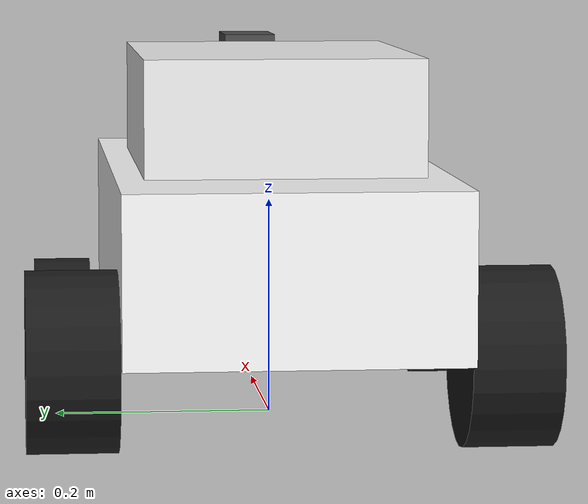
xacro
<?xml version="1.0"?>
<robot name="diffbot" xmlns:xacro="http://www.ros.org/wiki/xacro">

  <!-- Xacro argument from launch for the controllers YAML path -->
  <xacro:arg name="controllers_yaml" default=""/>

  <!-- Floating root link for robot_state_publisher; not anchored to Gazebo world -->
  <link name="base_footprint"/>
  <joint name="base_footprint_to_base" type="fixed">
    <parent link="base_footprint"/>
    <child link="base_link"/>
    <origin xyz="0 0 0" rpy="0 0 0"/>
  </joint>

  <!-- Base chassis -->
  <link name="base_link">
    <inertial>
      <mass value="2.0"/>
      <inertia ixx="0.1" iyy="0.3" izz="0.3" ixy="0" ixz="0" iyz="0"/>
      <origin xyz="0 0 0.16"/>
    </inertial>
    <collision>
      <geometry>
        <box size="0.6 0.3 0.15"/>
      </geometry>
      <origin xyz="0 0 0.16"/>
    </collision>
    <visual name="chassis">
      <geometry>
        <box size="0.6 0.3 0.15"/>
      </geometry>
      <origin xyz="0 0 0.16"/>
      <material name="white">
        <color rgba="1 1 1 1"/>
      </material>
    </visual>
  </link>

  <!-- Cabin/body top -->
  <link name="cabin">
    <inertial>
      <mass value="0.5"/>
      <inertia ixx="0.05" iyy="0.05" izz="0.05" ixy="0" ixz="0" iyz="0"/>
      <origin xyz="0 0 0"/>
    </inertial>
    <visual name="cabin">
      <geometry>
        <box size="0.35 0.25 0.12"/>
      </geometry>
      <material name="light_white">
        <color rgba="0.95 0.95 0.95 1"/>
      </material>
    </visual>
  </link>

  <joint name="cabin_joint" type="fixed">
    <parent link="base_link"/>
    <child link="cabin"/>
    <origin xyz="0 0 0.28" rpy="0 0 0"/>
  </joint>

  <!-- Left wheel -->
  <link name="left_wheel">
    <inertial>
      <mass value="0.3"/>
      <inertia ixx="0.01" iyy="0.01" izz="0.01" ixy="0" ixz="0" iyz="0"/>
    </inertial>
    <collision>
      <geometry>
        <cylinder radius="0.08" length="0.08"/>
      </geometry>
      <origin xyz="0 0 0" rpy="1.5708 0 0"/>
    </collision>
    <visual>
      <geometry>
        <cylinder radius="0.08" length="0.08"/>
      </geometry>
      <origin xyz="0 0 0" rpy="1.5708 0 0"/>
      <material name="black">
        <color rgba="0.1 0.1 0.1 1"/>
      </material>
    </visual>
  </link>

  <!-- Right wheel -->
  <link name="right_wheel">
    <inertial>
      <mass value="0.3"/>
      <inertia ixx="0.01" iyy="0.01" izz="0.01" ixy="0" ixz="0" iyz="0"/>
    </inertial>
    <collision>
      <geometry>
        <cylinder radius="0.08" length="0.08"/>
      </geometry>
      <origin xyz="0 0 0" rpy="1.5708 0 0"/>
    </collision>
    <visual>
      <geometry>
        <cylinder radius="0.08" length="0.08"/>
      </geometry>
      <origin xyz="0 0 0" rpy="1.5708 0 0"/>
      <material name="black">
        <color rgba="0.1 0.1 0.1 1"/>
      </material>
    </visual>
  </link>

  <!-- Passive front support wheels -->
  <link name="front_left_wheel">
    <inertial>
      <mass value="0.1"/>
      <inertia ixx="0.001" iyy="0.001" izz="0.001" ixy="0" ixz="0" iyz="0"/>
    </inertial>
    <collision>
      <geometry>
        <sphere radius="0.055"/>
      </geometry>
    </collision>
    <visual>
      <geometry>
        <cylinder radius="0.06" length="0.055"/>
      </geometry>
      <origin xyz="0 0 0" rpy="1.5708 0 0"/>
      <material name="black">
        <color rgba="0.1 0.1 0.1 1"/>
      </material>
    </visual>
  </link>

  <link name="front_right_wheel">
    <inertial>
      <mass value="0.1"/>
      <inertia ixx="0.001" iyy="0.001" izz="0.001" ixy="0" ixz="0" iyz="0"/>
    </inertial>
    <collision>
      <geometry>
        <sphere radius="0.055"/>
      </geometry>
    </collision>
    <visual>
      <geometry>
        <cylinder radius="0.06" length="0.055"/>
      </geometry>
      <origin xyz="0 0 0" rpy="1.5708 0 0"/>
      <material name="black">
        <color rgba="0.1 0.1 0.1 1"/>
      </material>
    </visual>
  </link>

  <!-- Camera link -->
  <link name="camera_link">
    <inertial>
      <mass value="0.05"/>
      <inertia ixx="0.0001" iyy="0.0001" izz="0.0001" ixy="0" ixz="0" iyz="0"/>
    </inertial>
    <visual>
      <geometry>
        <box size="0.08 0.05 0.05"/>
      </geometry>
      <material name="gray">
        <color rgba="0.3 0.3 0.3 1"/>
      </material>
    </visual>
  </link>

  <!-- Joints for wheels -->
  <joint name="left_wheel_joint" type="continuous">
    <parent link="base_link"/>
    <child link="left_wheel"/>
    <origin xyz="-0.20 0.19 0.08" rpy="0 0 0"/>
    <axis xyz="0 1 0"/>
    <dynamics damping="0.2" friction="0.1"/>
    <limit effort="10" velocity="10"/>
  </joint>

  <joint name="right_wheel_joint" type="continuous">
    <parent link="base_link"/>
    <child link="right_wheel"/>
    <origin xyz="-0.20 -0.19 0.08" rpy="0 0 0"/>
    <axis xyz="0 1 0"/>
    <dynamics damping="0.2" friction="0.1"/>
    <limit effort="10" velocity="10"/>
  </joint>

  <joint name="front_left_wheel_joint" type="fixed">
    <parent link="base_link"/>
    <child link="front_left_wheel"/>
    <origin xyz="0.22 0.19 0.06" rpy="0 0 0"/>
  </joint>

  <joint name="front_right_wheel_joint" type="fixed">
    <parent link="base_link"/>
    <child link="front_right_wheel"/>
    <origin xyz="0.22 -0.19 0.06" rpy="0 0 0"/>
  </joint>

  <!-- Camera joint -->
  <joint name="camera_joint" type="fixed">
    <parent link="base_link"/>
    <child link="camera_link"/>
    <origin xyz="0.25 0 0.32" rpy="0 0 0"/>
  </joint>

  <!-- ros2_control differential drive -->
  <ros2_control name="GazeboSystem" type="system">
    <hardware>
      <plugin>gazebo_ros2_control/GazeboSystem</plugin>
    </hardware>
    <joint name="left_wheel_joint">
      <command_interface name="velocity"/>
      <state_interface name="position"/>
      <state_interface name="velocity"/>
    </joint>
    <joint name="right_wheel_joint">
      <command_interface name="velocity"/>
      <state_interface name="position"/>
      <state_interface name="velocity"/>
    </joint>
  </ros2_control>

  <!-- Gazebo plugin to load ros2_control -->
  <gazebo>
    <plugin name="gazebo_ros2_control" filename="libgazebo_ros2_control.so">
      <parameters>$(arg controllers_yaml)</parameters>
    </plugin>
  </gazebo>

  <gazebo reference="left_wheel">
    <mu1>1.2</mu1>
    <mu2>1.2</mu2>
  </gazebo>

  <gazebo reference="right_wheel">
    <mu1>1.2</mu1>
    <mu2>1.2</mu2>
  </gazebo>

  <gazebo reference="front_left_wheel">
    <mu1>0.02</mu1>
    <mu2>0.02</mu2>
  </gazebo>

  <gazebo reference="front_right_wheel">
    <mu1>0.02</mu1>
    <mu2>0.02</mu2>
  </gazebo>

  <!-- Camera sensor plugin -->
  <gazebo reference="camera_link">
    <sensor name="camera_sensor" type="camera">
      <always_on>1</always_on>
      <update_rate>30.0</update_rate>
      <pose>0 0 0 0 0 0</pose>
      <camera>
        <horizontal_fov>1.5708</horizontal_fov>
        <image>
          <width>320</width>
          <height>240</height>
          <format>R8G8B8</format>
        </image>
        <clip>
          <near>0.01</near>
          <far>100</far>
        </clip>
      </camera>
      <plugin name="camera_plugin" filename="libgazebo_ros_camera.so">
        <alwaysOn>1</alwaysOn>
        <updateRate>30.0</updateRate>
        <cameraName>camera</cameraName>
        <imageTopicName>/camera/image_raw</imageTopicName>
        <infoTopicName>/camera/camera_info</infoTopicName>
        <frameName>camera_link</frameName>
      </plugin>
    </sensor>
  </gazebo>

</robot>
